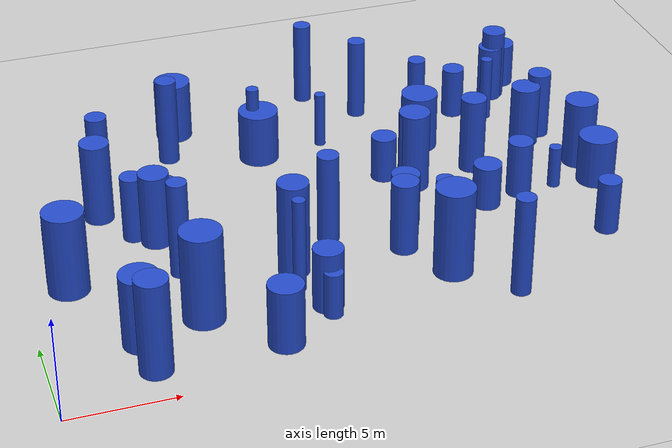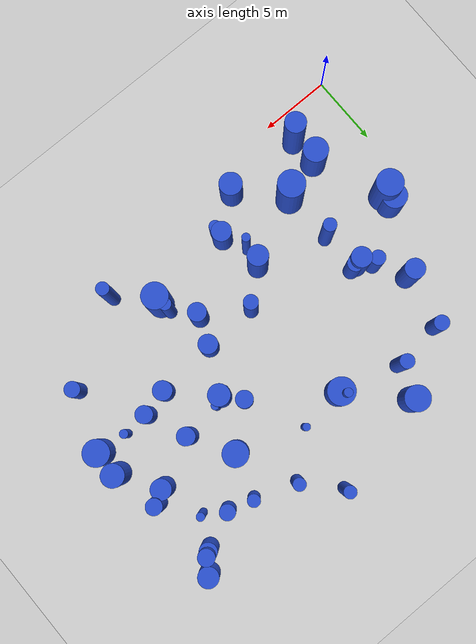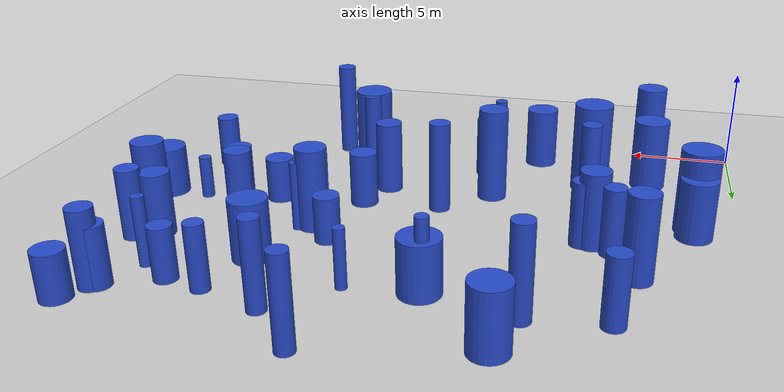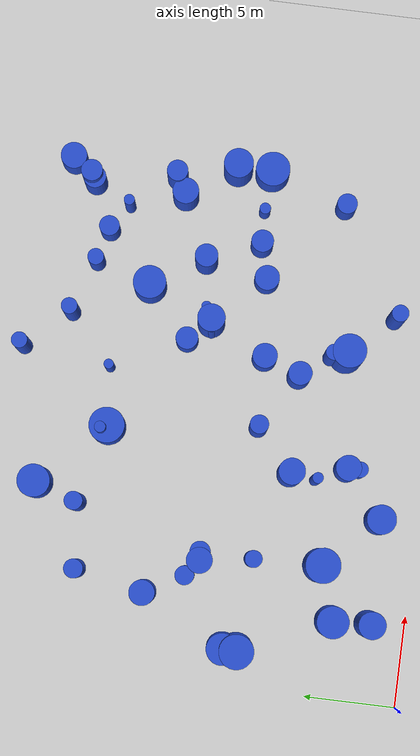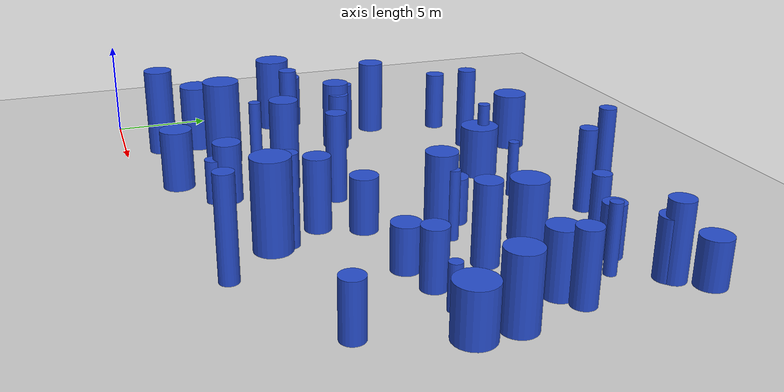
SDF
<sdf version="1.6">
 <world name="default">
  <model name="ground_plane">
   <static>1</static>
   <link name="link">
    <collision name="collision">
     <geometry><plane><normal>0 0 1</normal><size>100 100</size></plane></geometry>
     <surface><friction><ode><mu>100</mu><mu2>50</mu2></ode></friction></surface>
    </collision>
    <visual name="visual">
     <cast_shadows>0</cast_shadows>
     <geometry><plane><normal>0 0 1</normal><size>100 100</size></plane></geometry>
     <material>
      <script><uri>file://media/materials/scripts/gazebo.material</uri><name>Gazebo/Grey</name></script>
     </material>
    </visual>
   </link>
  </model>
  <model name="5">
   <static>0</static>
   <link name="link">
    <inertial>
     <mass>2</mass>
     <inertia>
      <ixx>1.85446</ixx>
      <ixy>0</ixy>
      <ixz>0</ixz>
      <iyy>1.85446</iyy>
      <iyz>0</iyz>
      <izz>0.0841204</izz>
     </inertia>
    </inertial>
    <collision name="collision">
     <geometry><cylinder><length>3.29763</length><radius>0.290035</radius></cylinder></geometry>
     <surface><contact><collide_without_contact>1</collide_without_contact></contact></surface>
    </collision>
    <visual name="visual">
     <geometry><cylinder><length>3.29763</length><radius>0.290035</radius></cylinder></geometry>
     <material>
      <script><uri>file://media/materials/scripts/gazebo.material</uri><name>Gazebo/Blue</name></script>
     </material>
    </visual>
    <gravity>0</gravity>
   </link>
   <pose>25.4526 17.6829 1.64882 0 -0 0</pose>
  </model>
  <model name="7">
   <static>0</static>
   <link name="link">
    <inertial>
     <mass>2</mass>
     <inertia>
      <ixx>0.786749</ixx>
      <ixy>0</ixy>
      <ixz>0</ixz>
      <iyy>0.786749</iyy>
      <iyz>0</iyz>
      <izz>0.0926018</izz>
     </inertia>
    </inertial>
    <collision name="collision">
     <geometry><cylinder><length>2.10777</length><radius>0.304305</radius></cylinder></geometry>
     <surface><contact><collide_without_contact>1</collide_without_contact></contact></surface>
    </collision>
    <visual name="visual">
     <geometry><cylinder><length>2.10777</length><radius>0.304305</radius></cylinder></geometry>
     <material>
      <script><uri>file://media/materials/scripts/gazebo.material</uri><name>Gazebo/Blue</name></script>
     </material>
    </visual>
    <gravity>0</gravity>
   </link>
   <pose>26.0501 10.3515 1.05388 0 -0 0</pose>
  </model>
  <model name="14">
   <static>0</static>
   <link name="link">
    <inertial>
     <mass>2</mass>
     <inertia><ixx>1.62326</ixx><ixy>0</ixy><ixz>0</ixz><iyy>1.62326</iyy><iyz>0</iyz><izz>0.944741</izz></inertia>
    </inertial>
    <collision name="collision">
     <geometry><cylinder><length>2.6278</length><radius>0.971978</radius></cylinder></geometry>
     <surface><contact><collide_without_contact>1</collide_without_contact></contact></surface>
    </collision>
    <visual name="visual">
     <geometry><cylinder><length>2.6278</length><radius>0.971978</radius></cylinder></geometry>
     <material>
      <script><uri>file://media/materials/scripts/gazebo.material</uri><name>Gazebo/Blue</name></script>
     </material>
    </visual>
    <gravity>0</gravity>
   </link>
   <pose>13.2788 17.3958 1.3139 0 -0 0</pose>
  </model>
  <model name="20">
   <static>0</static>
   <link name="link">
    <inertial>
     <mass>2</mass>
     <inertia><ixx>3.66593</ixx><ixy>0</ixy><ixz>0</ixz><iyy>3.66593</iyy><iyz>0</iyz><izz>0.841816</izz></inertia>
    </inertial>
    <collision name="collision">
     <geometry><cylinder><length>4.4125</length><radius>0.917505</radius></cylinder></geometry>
     <surface><contact><collide_without_contact>1</collide_without_contact></contact></surface>
    </collision>
    <visual name="visual">
     <geometry><cylinder><length>4.4125</length><radius>0.917505</radius></cylinder></geometry>
     <material>
      <script><uri>file://media/materials/scripts/gazebo.material</uri><name>Gazebo/Blue</name></script>
     </material>
    </visual>
    <gravity>0</gravity>
   </link>
   <pose>18.7168 4.95866 2.20625 0 -0 0</pose>
  </model>
  <model name="32">
   <static>0</static>
   <link name="link">
    <inertial>
     <mass>2</mass>
     <inertia><ixx>1.10606</ixx><ixy>0</ixy><ixz>0</ixz><iyy>1.10606</iyy><iyz>0</iyz><izz>0.512174</izz></inertia>
    </inertial>
    <collision name="collision">
     <geometry><cylinder><length>2.25828</length><radius>0.715663</radius></cylinder></geometry>
     <surface><contact><collide_without_contact>1</collide_without_contact></contact></surface>
    </collision>
    <visual name="visual">
     <geometry><cylinder><length>2.25828</length><radius>0.715663</radius></cylinder></geometry>
     <material>
      <script><uri>file://media/materials/scripts/gazebo.material</uri><name>Gazebo/Blue</name></script>
     </material>
    </visual>
    <gravity>0</gravity>
   </link>
   <pose>27.6259 21.0165 1.12914 0 -0 0</pose>
  </model>
  <model name="33">
   <static>0</static>
   <link name="link">
    <inertial>
     <mass>2</mass>
     <inertia><ixx>3.10542</ixx><ixy>0</ixy><ixz>0</ixz><iyy>3.10542</iyy><iyz>0</iyz><izz>0.188951</izz></inertia>
    </inertial>
    <collision name="collision">
     <geometry><cylinder><length>4.25037</length><radius>0.434685</radius></cylinder></geometry>
     <surface><contact><collide_without_contact>1</collide_without_contact></contact></surface>
    </collision>
    <visual name="visual">
     <geometry><cylinder><length>4.25037</length><radius>0.434685</radius></cylinder></geometry>
     <material>
      <script><uri>file://media/materials/scripts/gazebo.material</uri><name>Gazebo/Blue</name></script>
     </material>
    </visual>
    <gravity>0</gravity>
   </link>
   <pose>17.1407 22.5153 2.12519 0 -0 0</pose>
  </model>
  <model name="34">
   <static>0</static>
   <link name="link">
    <inertial>
     <mass>2</mass>
     <inertia>
      <ixx>2.68848</ixx>
      <ixy>0</ixy>
      <ixz>0</ixz>
      <iyy>2.68848</iyy>
      <iyz>0</iyz>
      <izz>0.0949899</izz>
     </inertia>
    </inertial>
    <collision name="collision">
     <geometry><cylinder><length>3.98069</length><radius>0.308204</radius></cylinder></geometry>
     <surface><contact><collide_without_contact>1</collide_without_contact></contact></surface>
    </collision>
    <visual name="visual">
     <geometry><cylinder><length>3.98069</length><radius>0.308204</radius></cylinder></geometry>
     <material>
      <script><uri>file://media/materials/scripts/gazebo.material</uri><name>Gazebo/Blue</name></script>
     </material>
    </visual>
    <gravity>0</gravity>
   </link>
   <pose>19.1357 12.4341 1.99035 0 -0 0</pose>
  </model>
  <model name="41">
   <static>0</static>
   <link name="link">
    <inertial>
     <mass>2</mass>
     <inertia><ixx>1.91434</ixx><ixy>0</ixy><ixz>0</ixz><iyy>1.91434</iyy><iyz>0</iyz><izz>0.273493</izz></inertia>
    </inertial>
    <collision name="collision">
     <geometry><cylinder><length>3.26581</length><radius>0.522966</radius></cylinder></geometry>
     <surface><contact><collide_without_contact>1</collide_without_contact></contact></surface>
    </collision>
    <visual name="visual">
     <geometry><cylinder><length>3.26581</length><radius>0.522966</radius></cylinder></geometry>
     <material>
      <script><uri>file://media/materials/scripts/gazebo.material</uri><name>Gazebo/Blue</name></script>
     </material>
    </visual>
    <gravity>0</gravity>
   </link>
   <pose>5.77971 12.2342 1.63291 0 -0 0</pose>
  </model>
  <model name="46">
   <static>0</static>
   <link name="link">
    <inertial>
     <mass>2</mass>
     <inertia><ixx>3.85343</ixx><ixy>0</ixy><ixz>0</ixz><iyy>3.85343</iyy><iyz>0</iyz><izz>0.911922</izz></inertia>
    </inertial>
    <collision name="collision">
     <geometry><cylinder><length>4.51496</length><radius>0.954946</radius></cylinder></geometry>
     <surface><contact><collide_without_contact>1</collide_without_contact></contact></surface>
    </collision>
    <visual name="visual">
     <geometry><cylinder><length>4.51496</length><radius>0.954946</radius></cylinder></geometry>
     <material>
      <script><uri>file://media/materials/scripts/gazebo.material</uri><name>Gazebo/Blue</name></script>
     </material>
    </visual>
    <gravity>0</gravity>
   </link>
   <pose>7.20316 4.98001 2.25748 0 -0 0</pose>
  </model>
  <model name="51">
   <static>0</static>
   <link name="link">
    <inertial>
     <mass>2</mass>
     <inertia><ixx>1.8187</ixx><ixy>0</ixy><ixz>0</ixz><iyy>1.8187</iyy><iyz>0</iyz><izz>0.803823</izz></inertia>
    </inertial>
    <collision name="collision">
     <geometry><cylinder><length>2.91561</length><radius>0.896562</radius></cylinder></geometry>
     <surface><contact><collide_without_contact>1</collide_without_contact></contact></surface>
    </collision>
    <visual name="visual">
     <geometry><cylinder><length>2.91561</length><radius>0.896562</radius></cylinder></geometry>
     <material>
      <script><uri>file://media/materials/scripts/gazebo.material</uri><name>Gazebo/Blue</name></script>
     </material>
    </visual>
    <gravity>0</gravity>
   </link>
   <pose>21.2134 16.0586 1.4578 0 -0 0</pose>
  </model>
  <model name="52">
   <static>0</static>
   <link name="link">
    <inertial>
     <mass>2</mass>
     <inertia><ixx>2.36568</ixx><ixy>0</ixy><ixz>0</ixz><iyy>2.36568</iyy><iyz>0</iyz><izz>0.418317</izz></inertia>
    </inertial>
    <collision name="collision">
     <geometry><cylinder><length>3.5971</length><radius>0.646775</radius></cylinder></geometry>
     <surface><contact><collide_without_contact>1</collide_without_contact></contact></surface>
    </collision>
    <visual name="visual">
     <geometry><cylinder><length>3.5971</length><radius>0.646775</radius></cylinder></geometry>
     <material>
      <script><uri>file://media/materials/scripts/gazebo.material</uri><name>Gazebo/Blue</name></script>
     </material>
    </visual>
    <gravity>0</gravity>
   </link>
   <pose>17.268 7.40656 1.79855 0 -0 0</pose>
  </model>
  <model name="53">
   <static>0</static>
   <link name="link">
    <inertial>
     <mass>2</mass>
     <inertia><ixx>2.66253</ixx><ixy>0</ixy><ixz>0</ixz><iyy>2.66253</iyy><iyz>0</iyz><izz>0.387502</izz></inertia>
    </inertial>
    <collision name="collision">
     <geometry><cylinder><length>3.84872</length><radius>0.622496</radius></cylinder></geometry>
     <surface><contact><collide_without_contact>1</collide_without_contact></contact></surface>
    </collision>
    <visual name="visual">
     <geometry><cylinder><length>3.84872</length><radius>0.622496</radius></cylinder></geometry>
     <material>
      <script><uri>file://media/materials/scripts/gazebo.material</uri><name>Gazebo/Blue</name></script>
     </material>
    </visual>
    <gravity>0</gravity>
   </link>
   <pose>22.9097 13.1703 1.92436 0 -0 0</pose>
  </model>
  <model name="69">
   <static>0</static>
   <link name="link">
    <inertial>
     <mass>2</mass>
     <inertia><ixx>1.2354</ixx><ixy>0</ixy><ixz>0</ixz><iyy>1.2354</iyy><iyz>0</iyz><izz>0.302272</izz></inertia>
    </inertial>
    <collision name="collision">
     <geometry><cylinder><length>2.5506</length><radius>0.549793</radius></cylinder></geometry>
     <surface><contact><collide_without_contact>1</collide_without_contact></contact></surface>
    </collision>
    <visual name="visual">
     <geometry><cylinder><length>2.5506</length><radius>0.549793</radius></cylinder></geometry>
     <material>
      <script><uri>file://media/materials/scripts/gazebo.material</uri><name>Gazebo/Blue</name></script>
     </material>
    </visual>
    <gravity>0</gravity>
   </link>
   <pose>24.0203 18.6117 1.2753 0 -0 0</pose>
  </model>
  <model name="71">
   <static>0</static>
   <link name="link">
    <inertial>
     <mass>2</mass>
     <inertia><ixx>1.5047</ixx><ixy>0</ixy><ixz>0</ixz><iyy>1.5047</iyy><iyz>0</iyz><izz>0.368322</izz></inertia>
    </inertial>
    <collision name="collision">
     <geometry><cylinder><length>2.81482</length><radius>0.606895</radius></cylinder></geometry>
     <surface><contact><collide_without_contact>1</collide_without_contact></contact></surface>
    </collision>
    <visual name="visual">
     <geometry><cylinder><length>2.81482</length><radius>0.606895</radius></cylinder></geometry>
     <material>
      <script><uri>file://media/materials/scripts/gazebo.material</uri><name>Gazebo/Blue</name></script>
     </material>
    </visual>
    <gravity>0</gravity>
   </link>
   <pose>24.1776 10.2792 1.40741 0 -0 0</pose>
  </model>
  <model name="73">
   <static>0</static>
   <link name="link">
    <inertial>
     <mass>2</mass>
     <inertia>
      <ixx>0.913764</ixx>
      <ixy>0</ixy>
      <ixz>0</ixz>
      <iyy>0.913764</iyy>
      <iyz>0</iyz>
      <izz>0.189416</izz>
     </inertia>
    </inertial>
    <collision name="collision">
     <geometry><cylinder><length>2.21683</length><radius>0.435219</radius></cylinder></geometry>
     <surface><contact><collide_without_contact>1</collide_without_contact></contact></surface>
    </collision>
    <visual name="visual">
     <geometry><cylinder><length>2.21683</length><radius>0.435219</radius></cylinder></geometry>
     <material>
      <script><uri>file://media/materials/scripts/gazebo.material</uri><name>Gazebo/Blue</name></script>
     </material>
    </visual>
    <gravity>0</gravity>
   </link>
   <pose>12.5938 3.5096 1.10842 0 -0 0</pose>
  </model>
  <model name="74">
   <static>0</static>
   <link name="link">
    <inertial>
     <mass>2</mass>
     <inertia><ixx>3.01073</ixx><ixy>0</ixy><ixz>0</ixz><iyy>3.01073</iyy><iyz>0</iyz><izz>0.487504</izz></inertia>
    </inertial>
    <collision name="collision">
     <geometry><cylinder><length>4.07454</length><radius>0.698215</radius></cylinder></geometry>
     <surface><contact><collide_without_contact>1</collide_without_contact></contact></surface>
    </collision>
    <visual name="visual">
     <geometry><cylinder><length>4.07454</length><radius>0.698215</radius></cylinder></geometry>
     <material>
      <script><uri>file://media/materials/scripts/gazebo.material</uri><name>Gazebo/Blue</name></script>
     </material>
    </visual>
    <gravity>0</gravity>
   </link>
   <pose>4.59094 14.3631 2.03727 0 -0 0</pose>
  </model>
  <model name="78">
   <static>0</static>
   <link name="link">
    <inertial>
     <mass>2</mass>
     <inertia><ixx>1.04196</ixx><ixy>0</ixy><ixz>0</ixz><iyy>1.04196</iyy><iyz>0</iyz><izz>0.37835</izz></inertia>
    </inertial>
    <collision name="collision">
     <geometry><cylinder><length>2.26201</length><radius>0.615102</radius></cylinder></geometry>
     <surface><contact><collide_without_contact>1</collide_without_contact></contact></surface>
    </collision>
    <visual name="visual">
     <geometry><cylinder><length>2.26201</length><radius>0.615102</radius></cylinder></geometry>
     <material>
      <script><uri>file://media/materials/scripts/gazebo.material</uri><name>Gazebo/Blue</name></script>
     </material>
    </visual>
    <gravity>0</gravity>
   </link>
   <pose>18.5113 13.6926 1.131 0 -0 0</pose>
  </model>
  <model name="80">
   <static>0</static>
   <link name="link">
    <inertial>
     <mass>2</mass>
     <inertia><ixx>1.70039</ixx><ixy>0</ixy><ixz>0</ixz><iyy>1.70039</iyy><iyz>0</iyz><izz>0.196762</izz></inertia>
    </inertial>
    <collision name="collision">
     <geometry><cylinder><length>3.10033</length><radius>0.443578</radius></cylinder></geometry>
     <surface><contact><collide_without_contact>1</collide_without_contact></contact></surface>
    </collision>
    <visual name="visual">
     <geometry><cylinder><length>3.10033</length><radius>0.443578</radius></cylinder></geometry>
     <material>
      <script><uri>file://media/materials/scripts/gazebo.material</uri><name>Gazebo/Blue</name></script>
     </material>
    </visual>
    <gravity>0</gravity>
   </link>
   <pose>22.1964 19.1009 1.55016 0 -0 0</pose>
  </model>
  <model name="92">
   <static>0</static>
   <link name="link">
    <inertial>
     <mass>2</mass>
     <inertia><ixx>2.9796</ixx><ixy>0</ixy><ixz>0</ixz><iyy>2.9796</iyy><iyz>0</iyz><izz>0.564104</izz></inertia>
    </inertial>
    <collision name="collision">
     <geometry><cylinder><length>4.02309</length><radius>0.751069</radius></cylinder></geometry>
     <surface><contact><collide_without_contact>1</collide_without_contact></contact></surface>
    </collision>
    <visual name="visual">
     <geometry><cylinder><length>4.02309</length><radius>0.751069</radius></cylinder></geometry>
     <material>
      <script><uri>file://media/materials/scripts/gazebo.material</uri><name>Gazebo/Blue</name></script>
     </material>
    </visual>
    <gravity>0</gravity>
   </link>
   <pose>19.6033 12.4969 2.01155 0 -0 0</pose>
  </model>
  <model name="94">
   <static>0</static>
   <link name="link">
    <inertial>
     <mass>2</mass>
     <inertia><ixx>3.36593</ixx><ixy>0</ixy><ixz>0</ixz><iyy>3.36593</iyy><iyz>0</iyz><izz>0.249697</izz></inertia>
    </inertial>
    <collision name="collision">
     <geometry><cylinder><length>4.40982</length><radius>0.499697</radius></cylinder></geometry>
     <surface><contact><collide_without_contact>1</collide_without_contact></contact></surface>
    </collision>
    <visual name="visual">
     <geometry><cylinder><length>4.40982</length><radius>0.499697</radius></cylinder></geometry>
     <material>
      <script><uri>file://media/materials/scripts/gazebo.material</uri><name>Gazebo/Blue</name></script>
     </material>
    </visual>
    <gravity>0</gravity>
   </link>
   <pose>8.99531 18.5687 2.20491 0 -0 0</pose>
  </model>
  <model name="96">
   <static>0</static>
   <link name="link">
    <inertial>
     <mass>2</mass>
     <inertia><ixx>1.3536</ixx><ixy>0</ixy><ixz>0</ixz><iyy>1.3536</iyy><iyz>0</iyz><izz>0.0711329</izz></inertia>
    </inertial>
    <collision name="collision">
     <geometry><cylinder><length>2.81215</length><radius>0.266707</radius></cylinder></geometry>
     <surface><contact><collide_without_contact>1</collide_without_contact></contact></surface>
    </collision>
    <visual name="visual">
     <geometry><cylinder><length>2.81215</length><radius>0.266707</radius></cylinder></geometry>
     <material>
      <script><uri>file://media/materials/scripts/gazebo.material</uri><name>Gazebo/Blue</name></script>
     </material>
    </visual>
    <gravity>0</gravity>
   </link>
   <pose>16.5562 17.6942 1.40608 0 -0 0</pose>
  </model>
  <model name="102">
   <static>0</static>
   <link name="link">
    <inertial>
     <mass>2</mass>
     <inertia><ixx>3.88573</ixx><ixy>0</ixy><ixz>0</ixz><iyy>3.88573</iyy><iyz>0</iyz><izz>0.522101</izz></inertia>
    </inertial>
    <collision name="collision">
     <geometry><cylinder><length>4.66349</length><radius>0.722565</radius></cylinder></geometry>
     <surface><contact><collide_without_contact>1</collide_without_contact></contact></surface>
    </collision>
    <visual name="visual">
     <geometry><cylinder><length>4.66349</length><radius>0.722565</radius></cylinder></geometry>
     <material>
      <script><uri>file://media/materials/scripts/gazebo.material</uri><name>Gazebo/Blue</name></script>
     </material>
    </visual>
    <gravity>0</gravity>
   </link>
   <pose>11.9552 7.23054 2.33174 0 -0 0</pose>
  </model>
  <model name="112">
   <static>0</static>
   <link name="link">
    <inertial>
     <mass>2</mass>
     <inertia><ixx>3.488</ixx><ixy>0</ixy><ixz>0</ixz><iyy>3.488</iyy><iyz>0</iyz><izz>0.261794</izz></inertia>
    </inertial>
    <collision name="collision">
     <geometry><cylinder><length>4.48805</length><radius>0.511658</radius></cylinder></geometry>
     <surface><contact><collide_without_contact>1</collide_without_contact></contact></surface>
    </collision>
    <visual name="visual">
     <geometry><cylinder><length>4.48805</length><radius>0.511658</radius></cylinder></geometry>
     <material>
      <script><uri>file://media/materials/scripts/gazebo.material</uri><name>Gazebo/Blue</name></script>
     </material>
    </visual>
    <gravity>0</gravity>
   </link>
   <pose>14.2304 9.25693 2.24403 0 -0 0</pose>
  </model>
  <model name="113">
   <static>0</static>
   <link name="link">
    <inertial>
     <mass>2</mass>
     <inertia><ixx>2.51073</ixx><ixy>0</ixy><ixz>0</ixz><iyy>2.51073</iyy><iyz>0</iyz><izz>0.506951</izz></inertia>
    </inertial>
    <collision name="collision">
     <geometry><cylinder><length>3.68015</length><radius>0.712005</radius></cylinder></geometry>
     <surface><contact><collide_without_contact>1</collide_without_contact></contact></surface>
    </collision>
    <visual name="visual">
     <geometry><cylinder><length>3.68015</length><radius>0.712005</radius></cylinder></geometry>
     <material>
      <script><uri>file://media/materials/scripts/gazebo.material</uri><name>Gazebo/Blue</name></script>
     </material>
    </visual>
    <gravity>0</gravity>
   </link>
   <pose>6.67221 11.5352 1.84008 0 -0 0</pose>
  </model>
  <model name="125">
   <static>0</static>
   <link name="link">
    <inertial>
     <mass>2</mass>
     <inertia>
      <ixx>2.33344</ixx>
      <ixy>0</ixy>
      <ixz>0</ixz>
      <iyy>2.33344</iyy>
      <iyz>0</iyz>
      <izz>0.0951708</izz>
     </inertia>
    </inertial>
    <collision name="collision">
     <geometry><cylinder><length>3.70339</length><radius>0.308498</radius></cylinder></geometry>
     <surface><contact><collide_without_contact>1</collide_without_contact></contact></surface>
    </collision>
    <visual name="visual">
     <geometry><cylinder><length>3.70339</length><radius>0.308498</radius></cylinder></geometry>
     <material>
      <script><uri>file://media/materials/scripts/gazebo.material</uri><name>Gazebo/Blue</name></script>
     </material>
    </visual>
    <gravity>0</gravity>
   </link>
   <pose>13.0965 17.6955 1.8517 0 -0 0</pose>
  </model>
  <model name="126">
   <static>0</static>
   <link name="link">
    <inertial>
     <mass>2</mass>
     <inertia><ixx>2.28573</ixx><ixy>0</ixy><ixz>0</ixz><iyy>2.28573</iyy><iyz>0</iyz><izz>0.638957</izz></inertia>
    </inertial>
    <collision name="collision">
     <geometry><cylinder><length>3.43475</length><radius>0.799348</radius></cylinder></geometry>
     <surface><contact><collide_without_contact>1</collide_without_contact></contact></surface>
    </collision>
    <visual name="visual">
     <geometry><cylinder><length>3.43475</length><radius>0.799348</radius></cylinder></geometry>
     <material>
      <script><uri>file://media/materials/scripts/gazebo.material</uri><name>Gazebo/Blue</name></script>
     </material>
    </visual>
    <gravity>0</gravity>
   </link>
   <pose>28.1238 12.0692 1.71738 0 -0 0</pose>
  </model>
  <model name="129">
   <static>0</static>
   <link name="link">
    <inertial>
     <mass>2</mass>
     <inertia><ixx>1.03231</ixx><ixy>0</ixy><ixz>0</ixz><iyy>1.03231</iyy><iyz>0</iyz><izz>0.463114</izz></inertia>
    </inertial>
    <collision name="collision">
     <geometry><cylinder><length>2.19191</length><radius>0.680525</radius></cylinder></geometry>
     <surface><contact><collide_without_contact>1</collide_without_contact></contact></surface>
    </collision>
    <visual name="visual">
     <geometry><cylinder><length>2.19191</length><radius>0.680525</radius></cylinder></geometry>
     <material>
      <script><uri>file://media/materials/scripts/gazebo.material</uri><name>Gazebo/Blue</name></script>
     </material>
    </visual>
    <gravity>0</gravity>
   </link>
   <pose>22.3022 9.78232 1.09596 0 -0 0</pose>
  </model>
  <model name="135">
   <static>0</static>
   <link name="link">
    <inertial>
     <mass>2</mass>
     <inertia>
      <ixx>1.90516</ixx>
      <ixy>0</ixy>
      <ixz>0</ixz>
      <iyy>1.90516</iyy>
      <iyz>0</iyz>
      <izz>0.0770723</izz>
     </inertia>
    </inertial>
    <collision name="collision">
     <geometry><cylinder><length>3.3466</length><radius>0.277619</radius></cylinder></geometry>
     <surface><contact><collide_without_contact>1</collide_without_contact></contact></surface>
    </collision>
    <visual name="visual">
     <geometry><cylinder><length>3.3466</length><radius>0.277619</radius></cylinder></geometry>
     <material>
      <script><uri>file://media/materials/scripts/gazebo.material</uri><name>Gazebo/Blue</name></script>
     </material>
    </visual>
    <gravity>0</gravity>
   </link>
   <pose>20.2434 12.836 1.6733 0 -0 0</pose>
  </model>
  <model name="138">
   <static>0</static>
   <link name="link">
    <inertial>
     <mass>2</mass>
     <inertia><ixx>2.48641</ixx><ixy>0</ixy><ixz>0</ixz><iyy>2.48641</iyy><iyz>0</iyz><izz>0.770894</izz></inertia>
    </inertial>
    <collision name="collision">
     <geometry><cylinder><length>3.55046</length><radius>0.878006</radius></cylinder></geometry>
     <surface><contact><collide_without_contact>1</collide_without_contact></contact></surface>
    </collision>
    <visual name="visual">
     <geometry><cylinder><length>3.55046</length><radius>0.878006</radius></cylinder></geometry>
     <material>
      <script><uri>file://media/materials/scripts/gazebo.material</uri><name>Gazebo/Blue</name></script>
     </material>
    </visual>
    <gravity>0</gravity>
   </link>
   <pose>4.26644 4.05533 1.77523 0 -0 0</pose>
  </model>
  <model name="162">
   <static>0</static>
   <link name="link">
    <inertial>
     <mass>2</mass>
     <inertia><ixx>2.97159</ixx><ixy>0</ixy><ixz>0</ixz><iyy>2.97159</iyy><iyz>0</iyz><izz>0.193947</izz></inertia>
    </inertial>
    <collision name="collision">
     <geometry><cylinder><length>4.15304</length><radius>0.440394</radius></cylinder></geometry>
     <surface><contact><collide_without_contact>1</collide_without_contact></contact></surface>
    </collision>
    <visual name="visual">
     <geometry><cylinder><length>4.15304</length><radius>0.440394</radius></cylinder></geometry>
     <material>
      <script><uri>file://media/materials/scripts/gazebo.material</uri><name>Gazebo/Blue</name></script>
     </material>
    </visual>
    <gravity>0</gravity>
   </link>
   <pose>19.2849 20.1109 2.07652 0 -0 0</pose>
  </model>
  <model name="163">
   <static>0</static>
   <link name="link">
    <inertial>
     <mass>2</mass>
     <inertia><ixx>2.10866</ixx><ixy>0</ixy><ixz>0</ixz><iyy>2.10866</iyy><iyz>0</iyz><izz>0.326374</izz></inertia>
    </inertial>
    <collision name="collision">
     <geometry><cylinder><length>3.41656</length><radius>0.571292</radius></cylinder></geometry>
     <surface><contact><collide_without_contact>1</collide_without_contact></contact></surface>
    </collision>
    <visual name="visual">
     <geometry><cylinder><length>3.41656</length><radius>0.571292</radius></cylinder></geometry>
     <material>
      <script><uri>file://media/materials/scripts/gazebo.material</uri><name>Gazebo/Blue</name></script>
     </material>
    </visual>
    <gravity>0</gravity>
   </link>
   <pose>27.323 15.2917 1.70828 0 -0 0</pose>
  </model>
  <model name="164">
   <static>0</static>
   <link name="link">
    <inertial>
     <mass>2</mass>
     <inertia><ixx>3.22352</ixx><ixy>0</ixy><ixz>0</ixz><iyy>3.22352</iyy><iyz>0</iyz><izz>0.898502</izz></inertia>
    </inertial>
    <collision name="collision">
     <geometry><cylinder><length>4.0799</length><radius>0.947894</radius></cylinder></geometry>
     <surface><contact><collide_without_contact>1</collide_without_contact></contact></surface>
    </collision>
    <visual name="visual">
     <geometry><cylinder><length>4.0799</length><radius>0.947894</radius></cylinder></geometry>
     <material>
      <script><uri>file://media/materials/scripts/gazebo.material</uri><name>Gazebo/Blue</name></script>
     </material>
    </visual>
    <gravity>0</gravity>
   </link>
   <pose>2.09293 8.98197 2.03995 0 -0 0</pose>
  </model>
  <model name="166">
   <static>0</static>
   <link name="link">
    <inertial>
     <mass>2</mass>
     <inertia><ixx>3.32749</ixx><ixy>0</ixy><ixz>0</ixz><iyy>3.32749</iyy><iyz>0</iyz><izz>0.185958</izz></inertia>
    </inertial>
    <collision name="collision">
     <geometry><cylinder><length>4.40534</length><radius>0.431229</radius></cylinder></geometry>
     <surface><contact><collide_without_contact>1</collide_without_contact></contact></surface>
    </collision>
    <visual name="visual">
     <geometry><cylinder><length>4.40534</length><radius>0.431229</radius></cylinder></geometry>
     <material>
      <script><uri>file://media/materials/scripts/gazebo.material</uri><name>Gazebo/Blue</name></script>
     </material>
    </visual>
    <gravity>0</gravity>
   </link>
   <pose>18.5444 5.78636 2.20267 0 -0 0</pose>
  </model>
  <model name="176">
   <static>0</static>
   <link name="link">
    <inertial>
     <mass>2</mass>
     <inertia><ixx>1.55889</ixx><ixy>0</ixy><ixz>0</ixz><iyy>1.55889</iyy><iyz>0</iyz><izz>0.375125</izz></inertia>
    </inertial>
    <collision name="collision">
     <geometry><cylinder><length>2.86844</length><radius>0.612475</radius></cylinder></geometry>
     <surface><contact><collide_without_contact>1</collide_without_contact></contact></surface>
    </collision>
    <visual name="visual">
     <geometry><cylinder><length>2.86844</length><radius>0.612475</radius></cylinder></geometry>
     <material>
      <script><uri>file://media/materials/scripts/gazebo.material</uri><name>Gazebo/Blue</name></script>
     </material>
    </visual>
    <gravity>0</gravity>
   </link>
   <pose>26.525 19.7111 1.43422 0 -0 0</pose>
  </model>
  <model name="180">
   <static>0</static>
   <link name="link">
    <inertial>
     <mass>2</mass>
     <inertia><ixx>1.32146</ixx><ixy>0</ixy><ixz>0</ixz><iyy>1.32146</iyy><iyz>0</iyz><izz>0.300409</izz></inertia>
    </inertial>
    <collision name="collision">
     <geometry><cylinder><length>2.65095</length><radius>0.548096</radius></cylinder></geometry>
     <surface><contact><collide_without_contact>1</collide_without_contact></contact></surface>
    </collision>
    <visual name="visual">
     <geometry><cylinder><length>2.65095</length><radius>0.548096</radius></cylinder></geometry>
     <material>
      <script><uri>file://media/materials/scripts/gazebo.material</uri><name>Gazebo/Blue</name></script>
     </material>
    </visual>
    <gravity>0</gravity>
   </link>
   <pose>26.7727 5.97526 1.32547 0 -0 0</pose>
  </model>
  <model name="190">
   <static>0</static>
   <link name="link">
    <inertial>
     <mass>2</mass>
     <inertia>
      <ixx>1.52095</ixx>
      <ixy>0</ixy>
      <ixz>0</ixz>
      <iyy>1.52095</iyy>
      <iyz>0</iyz>
      <izz>0.0884812</izz>
     </inertia>
    </inertial>
    <collision name="collision">
     <geometry><cylinder><length>2.97662</length><radius>0.297458</radius></cylinder></geometry>
     <surface><contact><collide_without_contact>1</collide_without_contact></contact></surface>
    </collision>
    <visual name="visual">
     <geometry><cylinder><length>2.97662</length><radius>0.297458</radius></cylinder></geometry>
     <material>
      <script><uri>file://media/materials/scripts/gazebo.material</uri><name>Gazebo/Blue</name></script>
     </material>
    </visual>
    <gravity>0</gravity>
   </link>
   <pose>18.8821 4.50562 1.48831 0 -0 0</pose>
  </model>
  <model name="193">
   <static>0</static>
   <link name="link">
    <inertial>
     <mass>2</mass>
     <inertia><ixx>3.88896</ixx><ixy>0</ixy><ixz>0</ixz><iyy>3.88896</iyy><iyz>0</iyz><izz>0.219308</izz></inertia>
    </inertial>
    <collision name="collision">
     <geometry><cylinder><length>4.76191</length><radius>0.468304</radius></cylinder></geometry>
     <surface><contact><collide_without_contact>1</collide_without_contact></contact></surface>
    </collision>
    <visual name="visual">
     <geometry><cylinder><length>4.76191</length><radius>0.468304</radius></cylinder></geometry>
     <material>
      <script><uri>file://media/materials/scripts/gazebo.material</uri><name>Gazebo/Blue</name></script>
     </material>
    </visual>
    <gravity>0</gravity>
   </link>
   <pose>7.09936 8.68752 2.38096 0 -0 0</pose>
  </model>
  <model name="198">
   <static>0</static>
   <link name="link">
    <inertial>
     <mass>2</mass>
     <inertia><ixx>1.94354</ixx><ixy>0</ixy><ixz>0</ixz><iyy>1.94354</iyy><iyz>0</iyz><izz>0.798761</izz></inertia>
    </inertial>
    <collision name="collision">
     <geometry><cylinder><length>3.04384</length><radius>0.893735</radius></cylinder></geometry>
     <surface><contact><collide_without_contact>1</collide_without_contact></contact></surface>
    </collision>
    <visual name="visual">
     <geometry><cylinder><length>3.04384</length><radius>0.893735</radius></cylinder></geometry>
     <material>
      <script><uri>file://media/materials/scripts/gazebo.material</uri><name>Gazebo/Blue</name></script>
     </material>
    </visual>
    <gravity>0</gravity>
   </link>
   <pose>9.81893 20.9071 1.52192 0 -0 0</pose>
  </model>
  <model name="203">
   <static>0</static>
   <link name="link">
    <inertial>
     <mass>2</mass>
     <inertia><ixx>3.87449</ixx><ixy>0</ixy><ixz>0</ixz><iyy>3.87449</iyy><iyz>0</iyz><izz>0.552332</izz></inertia>
    </inertial>
    <collision name="collision">
     <geometry><cylinder><length>4.6465</length><radius>0.743191</radius></cylinder></geometry>
     <surface><contact><collide_without_contact>1</collide_without_contact></contact></surface>
    </collision>
    <visual name="visual">
     <geometry><cylinder><length>4.6465</length><radius>0.743191</radius></cylinder></geometry>
     <material>
      <script><uri>file://media/materials/scripts/gazebo.material</uri><name>Gazebo/Blue</name></script>
     </material>
    </visual>
    <gravity>0</gravity>
   </link>
   <pose>4.3766 2.02422 2.32325 0 -0 0</pose>
  </model>
  <model name="206">
   <static>0</static>
   <link name="link">
    <inertial>
     <mass>2</mass>
     <inertia><ixx>1.90093</ixx><ixy>0</ixy><ixz>0</ixz><iyy>1.90093</iyy><iyz>0</iyz><izz>0.277404</izz></inertia>
    </inertial>
    <collision name="collision">
     <geometry><cylinder><length>3.25167</length><radius>0.526692</radius></cylinder></geometry>
     <surface><contact><collide_without_contact>1</collide_without_contact></contact></surface>
    </collision>
    <visual name="visual">
     <geometry><cylinder><length>3.25167</length><radius>0.526692</radius></cylinder></geometry>
     <material>
      <script><uri>file://media/materials/scripts/gazebo.material</uri><name>Gazebo/Blue</name></script>
     </material>
    </visual>
    <gravity>0</gravity>
   </link>
   <pose>5.40453 18.1767 1.62583 0 -0 0</pose>
  </model>
  <model name="213">
   <static>0</static>
   <link name="link">
    <inertial>
     <mass>2</mass>
     <inertia><ixx>1.43788</ixx><ixy>0</ixy><ixz>0</ixz><iyy>1.43788</iyy><iyz>0</iyz><izz>0.864671</izz></inertia>
    </inertial>
    <collision name="collision">
     <geometry><cylinder><length>2.45627</length><radius>0.929877</radius></cylinder></geometry>
     <surface><contact><collide_without_contact>1</collide_without_contact></contact></surface>
    </collision>
    <visual name="visual">
     <geometry><cylinder><length>2.45627</length><radius>0.929877</radius></cylinder></geometry>
     <material>
      <script><uri>file://media/materials/scripts/gazebo.material</uri><name>Gazebo/Blue</name></script>
     </material>
    </visual>
    <gravity>0</gravity>
   </link>
   <pose>28.1884 10.1909 1.22813 0 -0 0</pose>
  </model>
  <model name="219">
   <static>0</static>
   <link name="link">
    <inertial>
     <mass>2</mass>
     <inertia><ixx>1.85385</ixx><ixy>0</ixy><ixz>0</ixz><iyy>1.85385</iyy><iyz>0</iyz><izz>0.505461</izz></inertia>
    </inertial>
    <collision name="collision">
     <geometry><cylinder><length>3.09947</length><radius>0.710958</radius></cylinder></geometry>
     <surface><contact><collide_without_contact>1</collide_without_contact></contact></surface>
    </collision>
    <visual name="visual">
     <geometry><cylinder><length>3.09947</length><radius>0.710958</radius></cylinder></geometry>
     <material>
      <script><uri>file://media/materials/scripts/gazebo.material</uri><name>Gazebo/Blue</name></script>
     </material>
    </visual>
    <gravity>0</gravity>
   </link>
   <pose>26.3395 14.7307 1.54973 0 -0 0</pose>
  </model>
  <model name="222">
   <static>0</static>
   <link name="link">
    <inertial>
     <mass>2</mass>
     <inertia><ixx>1.44566</ixx><ixy>0</ixy><ixz>0</ixz><iyy>1.44566</iyy><iyz>0</iyz><izz>0.461568</izz></inertia>
    </inertial>
    <collision name="collision">
     <geometry><cylinder><length>2.69986</length><radius>0.679388</radius></cylinder></geometry>
     <surface><contact><collide_without_contact>1</collide_without_contact></contact></surface>
    </collision>
    <visual name="visual">
     <geometry><cylinder><length>2.69986</length><radius>0.679388</radius></cylinder></geometry>
     <material>
      <script><uri>file://media/materials/scripts/gazebo.material</uri><name>Gazebo/Blue</name></script>
     </material>
    </visual>
    <gravity>0</gravity>
   </link>
   <pose>18.0421 9.38761 1.34993 0 -0 0</pose>
  </model>
  <model name="223">
   <static>0</static>
   <link name="link">
    <inertial>
     <mass>2</mass>
     <inertia>
      <ixx>3.60529</ixx>
      <ixy>0</ixy>
      <ixz>0</ixz>
      <iyy>3.60529</iyy>
      <iyz>0</iyz>
      <izz>0.0882717</izz>
     </inertia>
    </inertial>
    <collision name="collision">
     <geometry><cylinder><length>4.62244</length><radius>0.297106</radius></cylinder></geometry>
     <surface><contact><collide_without_contact>1</collide_without_contact></contact></surface>
    </collision>
    <visual name="visual">
     <geometry><cylinder><length>4.62244</length><radius>0.297106</radius></cylinder></geometry>
     <material>
      <script><uri>file://media/materials/scripts/gazebo.material</uri><name>Gazebo/Blue</name></script>
     </material>
    </visual>
    <gravity>0</gravity>
   </link>
   <pose>11.7836 5.82699 2.31122 0 -0 0</pose>
  </model>
  <model name="232">
   <static>0</static>
   <link name="link">
    <inertial>
     <mass>2</mass>
     <inertia><ixx>2.41032</ixx><ixy>0</ixy><ixz>0</ixz><iyy>2.41032</iyy><iyz>0</iyz><izz>0.337116</izz></inertia>
    </inertial>
    <collision name="collision">
     <geometry><cylinder><length>3.6675</length><radius>0.580617</radius></cylinder></geometry>
     <surface><contact><collide_without_contact>1</collide_without_contact></contact></surface>
    </collision>
    <visual name="visual">
     <geometry><cylinder><length>3.6675</length><radius>0.580617</radius></cylinder></geometry>
     <material>
      <script><uri>file://media/materials/scripts/gazebo.material</uri><name>Gazebo/Blue</name></script>
     </material>
    </visual>
    <gravity>0</gravity>
   </link>
   <pose>26.7384 19.8581 1.83375 0 -0 0</pose>
  </model>
  <model name="238">
   <static>0</static>
   <link name="link">
    <inertial>
     <mass>2</mass>
     <inertia><ixx>1.76066</ixx><ixy>0</ixy><ixz>0</ixz><iyy>1.76066</iyy><iyz>0</iyz><izz>0.490048</izz></inertia>
    </inertial>
    <collision name="collision">
     <geometry><cylinder><length>3.01559</length><radius>0.700034</radius></cylinder></geometry>
     <surface><contact><collide_without_contact>1</collide_without_contact></contact></surface>
    </collision>
    <visual name="visual">
     <geometry><cylinder><length>3.01559</length><radius>0.700034</radius></cylinder></geometry>
     <material>
      <script><uri>file://media/materials/scripts/gazebo.material</uri><name>Gazebo/Blue</name></script>
     </material>
    </visual>
    <gravity>0</gravity>
   </link>
   <pose>12.5747 4.18833 1.5078 0 -0 0</pose>
  </model>
  <model name="241">
   <static>0</static>
   <link name="link">
    <inertial>
     <mass>2</mass>
     <inertia><ixx>1.81354</ixx><ixy>0</ixy><ixz>0</ixz><iyy>1.81354</iyy><iyz>0</iyz><izz>0.311613</izz></inertia>
    </inertial>
    <collision name="collision">
     <geometry><cylinder><length>3.15379</length><radius>0.558223</radius></cylinder></geometry>
     <surface><contact><collide_without_contact>1</collide_without_contact></contact></surface>
    </collision>
    <visual name="visual">
     <geometry><cylinder><length>3.15379</length><radius>0.558223</radius></cylinder></geometry>
     <material>
      <script><uri>file://media/materials/scripts/gazebo.material</uri><name>Gazebo/Blue</name></script>
     </material>
    </visual>
    <gravity>0</gravity>
   </link>
   <pose>7.15466 11.5564 1.5769 0 -0 0</pose>
  </model>
  <model name="242">
   <static>0</static>
   <link name="link">
    <inertial>
     <mass>2</mass>
     <inertia><ixx>4.07433</ixx><ixy>0</ixy><ixz>0</ixz><iyy>4.07433</iyy><iyz>0</iyz><izz>0.209536</izz></inertia>
    </inertial>
    <collision name="collision">
     <geometry><cylinder><length>4.88031</length><radius>0.457751</radius></cylinder></geometry>
     <surface><contact><collide_without_contact>1</collide_without_contact></contact></surface>
    </collision>
    <visual name="visual">
     <geometry><cylinder><length>4.88031</length><radius>0.457751</radius></cylinder></geometry>
     <material>
      <script><uri>file://media/materials/scripts/gazebo.material</uri><name>Gazebo/Blue</name></script>
     </material>
    </visual>
    <gravity>0</gravity>
   </link>
   <pose>20.9834 2.55197 2.44015 0 -0 0</pose>
  </model>
  <model name="244">
   <static>0</static>
   <link name="link">
    <inertial>
     <mass>2</mass>
     <inertia><ixx>1.823</ixx><ixy>0</ixy><ixz>0</ixz><iyy>1.823</iyy><iyz>0</iyz><izz>0.769265</izz></inertia>
    </inertial>
    <collision name="collision">
     <geometry><cylinder><length>2.93772</length><radius>0.877078</radius></cylinder></geometry>
     <surface><contact><collide_without_contact>1</collide_without_contact></contact></surface>
    </collision>
    <visual name="visual">
     <geometry><cylinder><length>2.93772</length><radius>0.877078</radius></cylinder></geometry>
     <material>
      <script><uri>file://media/materials/scripts/gazebo.material</uri><name>Gazebo/Blue</name></script>
     </material>
    </visual>
    <gravity>0</gravity>
   </link>
   <pose>2.1049 9.73701 1.46886 0 -0 0</pose>
  </model>
  <model name="247">
   <static>0</static>
   <link name="link">
    <inertial>
     <mass>2</mass>
     <inertia><ixx>1.89873</ixx><ixy>0</ixy><ixz>0</ixz><iyy>1.89873</iyy><iyz>0</iyz><izz>0.649582</izz></inertia>
    </inertial>
    <collision name="collision">
     <geometry><cylinder><length>3.07305</length><radius>0.805966</radius></cylinder></geometry>
     <surface><contact><collide_without_contact>1</collide_without_contact></contact></surface>
    </collision>
    <visual name="visual">
     <geometry><cylinder><length>3.07305</length><radius>0.805966</radius></cylinder></geometry>
     <material>
      <script><uri>file://media/materials/scripts/gazebo.material</uri><name>Gazebo/Blue</name></script>
     </material>
    </visual>
    <gravity>0</gravity>
   </link>
   <pose>10.0396 2.10356 1.53653 0 -0 0</pose>
  </model>
 </world>
</sdf>
